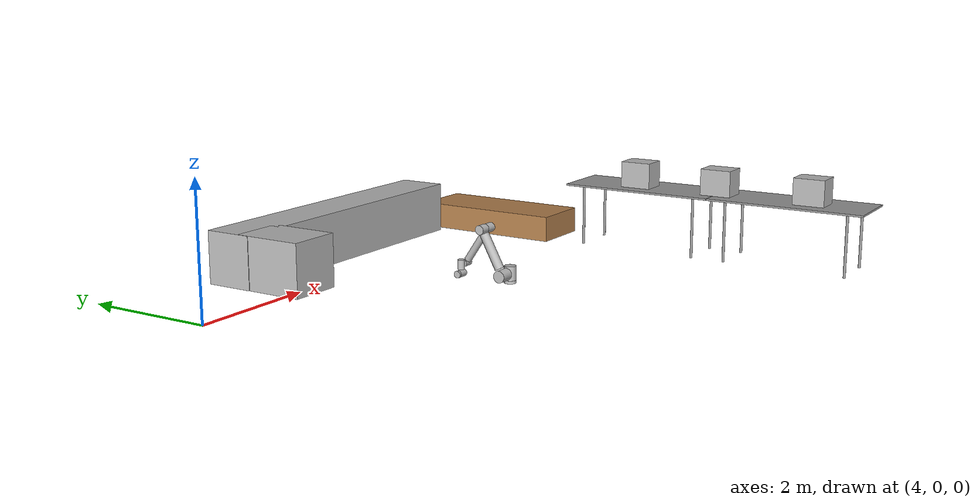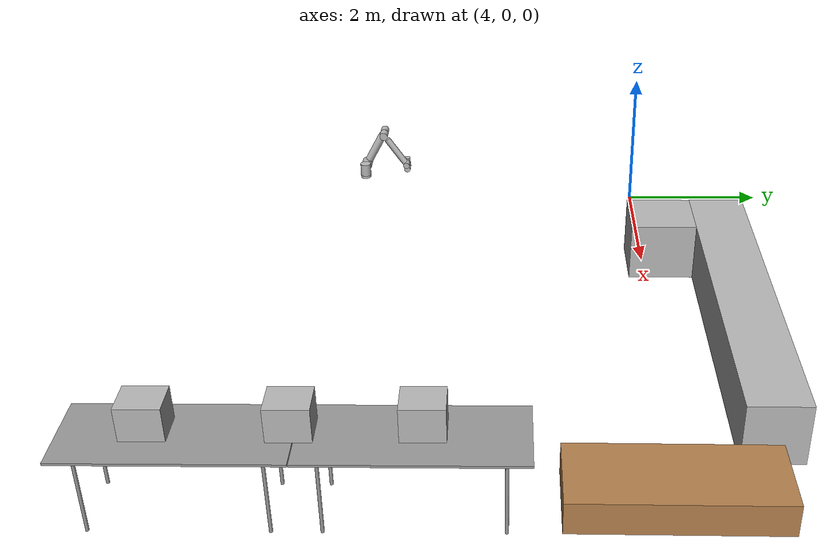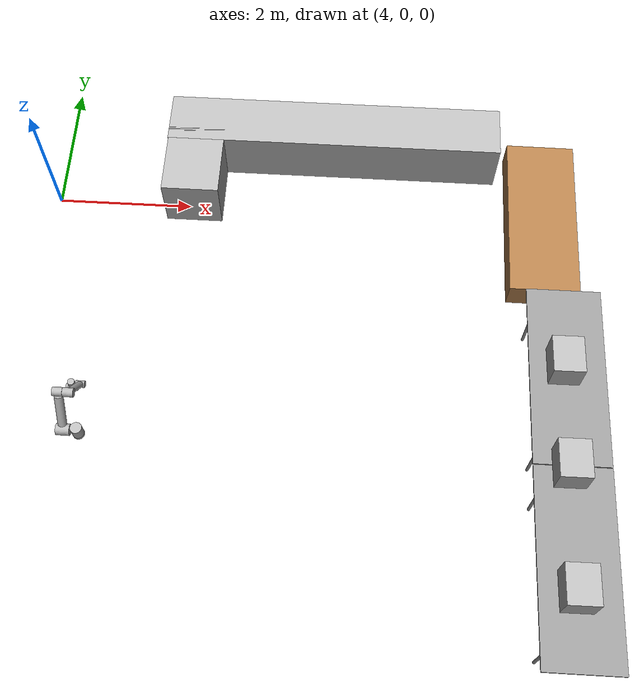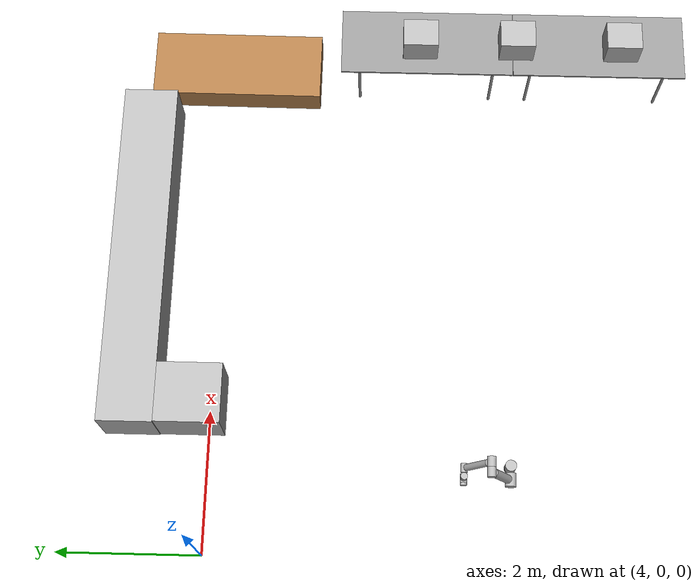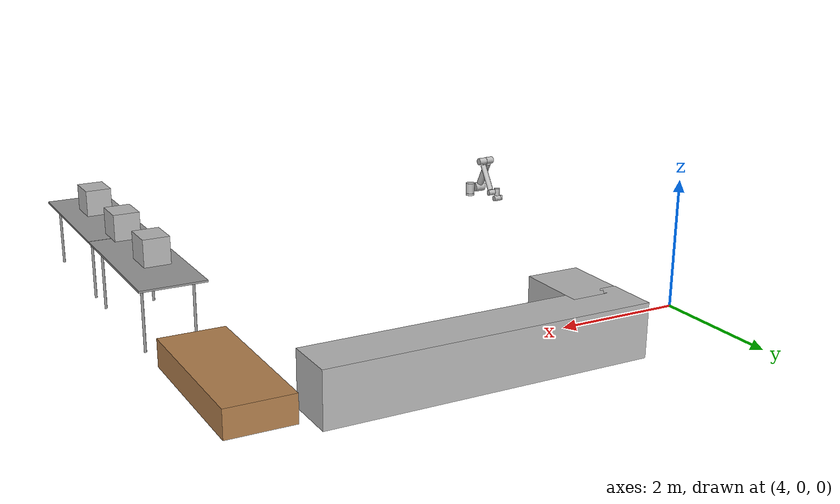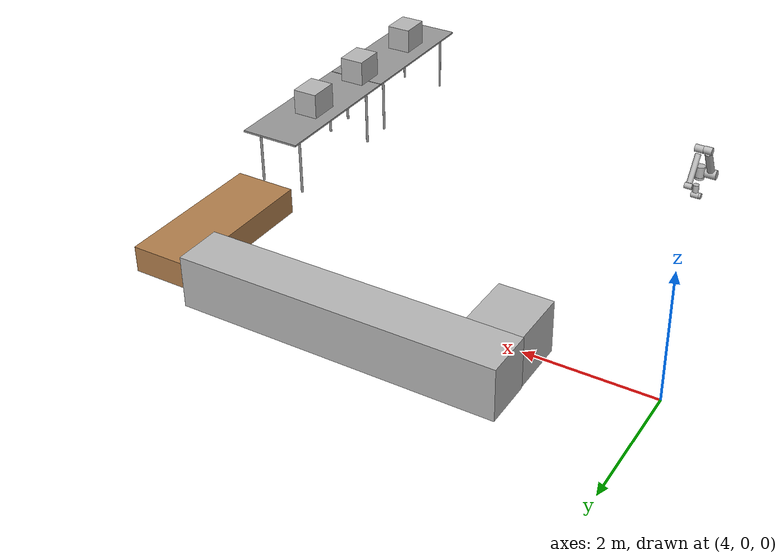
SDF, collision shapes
<sdf version="1.6">
 <model name="erica">
  <model name="3d_printer">
   <link name="link">
    <inertial>
     <mass>1</mass>
     <inertia><ixx>1</ixx><ixy>0</ixy><ixz>0</ixz><iyy>1</iyy><iyz>0</iyz><izz>1</izz></inertia>
    </inertial>
    <visual name="visual">
     <geometry><mesh><uri>model://erica/elements/3d_printer/meshes/model.dae</uri></mesh></geometry>
     <material><shader type="vertex"><normal_map>__default__</normal_map></shader></material>
    </visual>
    <collision name="collision">
     <pose>0.27 0.21 0.21 0 -0 0</pose>
     <geometry><box><size>0.5 0.41 0.42</size></box></geometry>
     <surface>
      <friction>
       <ode><mu>1</mu><mu2>1</mu2><fdir1>0 0 0</fdir1><slip1>0</slip1><slip2>0</slip2></ode>
       <torsional>
        <coefficient>1</coefficient>
        <patch_radius>0</patch_radius>
        <surface_radius>0</surface_radius>
        <use_patch_radius>1</use_patch_radius>
        <ode><slip>0</slip></ode>
       </torsional>
      </friction>
      <bounce><restitution_coefficient>0</restitution_coefficient><threshold>1e+06</threshold></bounce>
      <contact>
       <collide_without_contact>0</collide_without_contact>
       <collide_without_contact_bitmask>1</collide_without_contact_bitmask>
       <collide_bitmask>1</collide_bitmask>
       <ode>
        <soft_cfm>0</soft_cfm>
        <soft_erp>0.2</soft_erp>
        <kp>1e+13</kp>
        <kd>1</kd>
        <max_vel>0.01</max_vel>
        <min_depth>0</min_depth>
       </ode>
       <bullet>
        <split_impulse>1</split_impulse>
        <split_impulse_penetration_threshold>-0.01</split_impulse_penetration_threshold>
        <soft_cfm>0</soft_cfm>
        <soft_erp>0.2</soft_erp>
        <kp>1e+13</kp>
        <kd>1</kd>
       </bullet>
      </contact>
     </surface>
    </collision>
   </link>
   <static>1</static>
   <pose>11.0926 -2.58999 1.01742 0 0 -1.56275</pose>
  </model>
  <model name="3d_printer_clone">
   <link name="link">
    <inertial>
     <mass>1</mass>
     <inertia><ixx>1</ixx><ixy>0</ixy><ixz>0</ixz><iyy>1</iyy><iyz>0</iyz><izz>1</izz></inertia>
    </inertial>
    <visual name="visual">
     <geometry><mesh><uri>model://erica/elements/3d_printer/meshes/model.dae</uri></mesh></geometry>
     <material><shader type="vertex"><normal_map>__default__</normal_map></shader></material>
    </visual>
    <collision name="collision">
     <pose>0.27 0.21 0.21 0 -0 0</pose>
     <geometry><box><size>0.5 0.41 0.42</size></box></geometry>
     <surface>
      <friction>
       <ode><mu>1</mu><mu2>1</mu2><fdir1>0 0 0</fdir1><slip1>0</slip1><slip2>0</slip2></ode>
       <torsional>
        <coefficient>1</coefficient>
        <patch_radius>0</patch_radius>
        <surface_radius>0</surface_radius>
        <use_patch_radius>1</use_patch_radius>
        <ode><slip>0</slip></ode>
       </torsional>
      </friction>
      <bounce><restitution_coefficient>0</restitution_coefficient><threshold>1e+06</threshold></bounce>
      <contact>
       <collide_without_contact>0</collide_without_contact>
       <collide_without_contact_bitmask>1</collide_without_contact_bitmask>
       <collide_bitmask>1</collide_bitmask>
       <ode>
        <soft_cfm>0</soft_cfm>
        <soft_erp>0.2</soft_erp>
        <kp>1e+13</kp>
        <kd>1</kd>
        <max_vel>0.01</max_vel>
        <min_depth>0</min_depth>
       </ode>
       <bullet>
        <split_impulse>1</split_impulse>
        <split_impulse_penetration_threshold>-0.01</split_impulse_penetration_threshold>
        <soft_cfm>0</soft_cfm>
        <soft_erp>0.2</soft_erp>
        <kp>1e+13</kp>
        <kd>1</kd>
       </bullet>
      </contact>
     </surface>
    </collision>
   </link>
   <static>1</static>
   <pose>11.1071 -3.98668 1.01742 0 0 -1.56275</pose>
  </model>
  <model name="3d_printer_clone_clone">
   <link name="link">
    <inertial>
     <mass>1</mass>
     <inertia><ixx>1</ixx><ixy>0</ixy><ixz>0</ixz><iyy>1</iyy><iyz>0</iyz><izz>1</izz></inertia>
    </inertial>
    <visual name="visual">
     <geometry><mesh><uri>model://erica/elements/3d_printer/meshes/model.dae</uri></mesh></geometry>
     <material><shader type="vertex"><normal_map>__default__</normal_map></shader></material>
    </visual>
    <collision name="collision">
     <pose>0.27 0.21 0.21 0 -0 0</pose>
     <geometry><box><size>0.5 0.41 0.42</size></box></geometry>
     <surface>
      <friction>
       <ode><mu>1</mu><mu2>1</mu2><fdir1>0 0 0</fdir1><slip1>0</slip1><slip2>0</slip2></ode>
       <torsional>
        <coefficient>1</coefficient>
        <patch_radius>0</patch_radius>
        <surface_radius>0</surface_radius>
        <use_patch_radius>1</use_patch_radius>
        <ode><slip>0</slip></ode>
       </torsional>
      </friction>
      <bounce><restitution_coefficient>0</restitution_coefficient><threshold>1e+06</threshold></bounce>
      <contact>
       <collide_without_contact>0</collide_without_contact>
       <collide_without_contact_bitmask>1</collide_without_contact_bitmask>
       <collide_bitmask>1</collide_bitmask>
       <ode>
        <soft_cfm>0</soft_cfm>
        <soft_erp>0.2</soft_erp>
        <kp>1e+13</kp>
        <kd>1</kd>
        <max_vel>0.01</max_vel>
        <min_depth>0</min_depth>
       </ode>
       <bullet>
        <split_impulse>1</split_impulse>
        <split_impulse_penetration_threshold>-0.01</split_impulse_penetration_threshold>
        <soft_cfm>0</soft_cfm>
        <soft_erp>0.2</soft_erp>
        <kp>1e+13</kp>
        <kd>1</kd>
       </bullet>
      </contact>
     </surface>
    </collision>
   </link>
   <static>1</static>
   <pose>11.1113 -5.5157 1.01742 0 0 -1.56275</pose>
  </model>
  <model name="3d_sofa">
   <link name="link">
    <inertial>
     <mass>1</mass>
     <inertia><ixx>1</ixx><ixy>0</ixy><ixz>0</ixz><iyy>1</iyy><iyz>0</iyz><izz>1</izz></inertia>
    </inertial>
    <visual name="visual">
     <geometry>
      <mesh><uri>model://erica/elements/3d_sofa/meshes/Sofa.stl</uri><scale>1 1 1</scale></mesh>
     </geometry>
     <material>
      <script><uri>file://media/materials/scripts/gazebo.material</uri><name>Gazebo/Wood</name></script>
     </material>
    </visual>
    <collision name="collision">
     <pose>0.55 -0.5 0.21 0 -0 0</pose>
     <geometry><box><size>2.5 1 0.42</size></box></geometry>
     <surface>
      <friction>
       <ode><mu>1</mu><mu2>1</mu2><fdir1>0 0 0</fdir1><slip1>0</slip1><slip2>0</slip2></ode>
       <torsional>
        <coefficient>1</coefficient>
        <patch_radius>0</patch_radius>
        <surface_radius>0</surface_radius>
        <use_patch_radius>1</use_patch_radius>
        <ode><slip>0</slip></ode>
       </torsional>
      </friction>
      <bounce><restitution_coefficient>0</restitution_coefficient><threshold>1e+06</threshold></bounce>
      <contact>
       <collide_without_contact>0</collide_without_contact>
       <collide_without_contact_bitmask>1</collide_without_contact_bitmask>
       <collide_bitmask>1</collide_bitmask>
       <ode>
        <soft_cfm>0</soft_cfm>
        <soft_erp>0.2</soft_erp>
        <kp>1e+13</kp>
        <kd>1</kd>
        <max_vel>0.01</max_vel>
        <min_depth>0</min_depth>
       </ode>
       <bullet>
        <split_impulse>1</split_impulse>
        <split_impulse_penetration_threshold>-0.01</split_impulse_penetration_threshold>
        <soft_cfm>0</soft_cfm>
        <soft_erp>0.2</soft_erp>
        <kp>1e+13</kp>
        <kd>1</kd>
       </bullet>
      </contact>
     </surface>
    </collision>
   </link>
   <static>1</static>
   <pose>11.7694 0.412179 0 0 0 -1.57679</pose>
  </model>
  <model name="h_table2_clone">
   <link name="link">
    <inertial>
     <inertia><ixx>1</ixx><ixy>0</ixy><ixz>0</ixz><iyy>1</iyy><iyz>0</iyz><izz>1</izz></inertia>
     <mass>1</mass>
    </inertial>
    <visual name="back_left_leg">
     <pose>-0.98 0.38 0.5 0 -0 0</pose>
     <geometry><cylinder><radius>0.02</radius><length>1</length></cylinder></geometry>
     <material>
      <script><uri>file://media/materials/scripts/gazebo.material</uri><name>Gazebo/Grey</name></script>
      <ambient>0.3 0.3 0.3 1</ambient>
      <diffuse>0.7 0.7 0.7 1</diffuse>
      <specular>0.01 0.01 0.01 1</specular>
      <emissive>0 0 0 1</emissive>
      <shader type="vertex"><normal_map>__default__</normal_map></shader>
     </material>
    </visual>
    <visual name="front_right_leg">
     <pose>0.98 -0.38 0.5 0 -0 0</pose>
     <geometry><cylinder><radius>0.02</radius><length>1</length></cylinder></geometry>
     <material>
      <script><uri>file://media/materials/scripts/gazebo.material</uri><name>Gazebo/Grey</name></script>
      <ambient>0.3 0.3 0.3 1</ambient>
      <diffuse>0.7 0.7 0.7 1</diffuse>
      <specular>0.01 0.01 0.01 1</specular>
      <emissive>0 0 0 1</emissive>
      <shader type="vertex"><normal_map>__default__</normal_map></shader>
     </material>
    </visual>
    <visual name="front_left_leg">
     <pose>0.98 0.38 0.5 0 -0 0</pose>
     <geometry><cylinder><radius>0.02</radius><length>1</length></cylinder></geometry>
     <material>
      <script><uri>file://media/materials/scripts/gazebo.material</uri><name>Gazebo/Grey</name></script>
      <ambient>0.3 0.3 0.3 1</ambient>
      <diffuse>0.7 0.7 0.7 1</diffuse>
      <specular>0.01 0.01 0.01 1</specular>
      <emissive>0 0 0 1</emissive>
      <shader type="vertex"><normal_map>__default__</normal_map></shader>
     </material>
    </visual>
    <visual name="back_right_leg">
     <pose>-0.98 -0.38 0.5 0 -0 0</pose>
     <geometry><cylinder><radius>0.02</radius><length>1</length></cylinder></geometry>
     <material>
      <script><uri>file://media/materials/scripts/gazebo.material</uri><name>Gazebo/Grey</name></script>
      <ambient>0.3 0.3 0.3 1</ambient>
      <diffuse>0.7 0.7 0.7 1</diffuse>
      <specular>0.01 0.01 0.01 1</specular>
      <emissive>0 0 0 1</emissive>
      <shader type="vertex"><normal_map>__default__</normal_map></shader>
     </material>
    </visual>
    <visual name="visual1">
     <pose>0 0 1 0 -0 0</pose>
     <geometry><box><size>2.5 1 0.04</size></box></geometry>
     <material>
      <script><uri>file://media/materials/scripts/gazebo.material</uri><name>Gazebo/Wood</name></script>
      <ambient>1 1 1 1</ambient>
      <diffuse>1 1 1 1</diffuse>
      <specular>0.2 0.2 0.2 1</specular>
      <emissive>0 0 0 1</emissive>
      <shader type="vertex"><normal_map>__default__</normal_map></shader>
     </material>
    </visual>
    <collision name="back_left_leg">
     <pose>-0.98 0.38 0.5 0 -0 0</pose>
     <geometry><cylinder><radius>0.02</radius><length>1</length></cylinder></geometry>
     <surface>
      <friction>
       <ode><mu>1</mu><mu2>1</mu2><fdir1>0 0 0</fdir1><slip1>0</slip1><slip2>0</slip2></ode>
       <torsional>
        <coefficient>1</coefficient>
        <patch_radius>0</patch_radius>
        <surface_radius>0</surface_radius>
        <use_patch_radius>1</use_patch_radius>
        <ode><slip>0</slip></ode>
       </torsional>
      </friction>
      <bounce><restitution_coefficient>0</restitution_coefficient><threshold>1e+06</threshold></bounce>
      <contact>
       <collide_without_contact>0</collide_without_contact>
       <collide_without_contact_bitmask>1</collide_without_contact_bitmask>
       <collide_bitmask>1</collide_bitmask>
       <ode>
        <soft_cfm>0</soft_cfm>
        <soft_erp>0.2</soft_erp>
        <kp>1e+13</kp>
        <kd>1</kd>
        <max_vel>0.01</max_vel>
        <min_depth>0</min_depth>
       </ode>
       <bullet>
        <split_impulse>1</split_impulse>
        <split_impulse_penetration_threshold>-0.01</split_impulse_penetration_threshold>
        <soft_cfm>0</soft_cfm>
        <soft_erp>0.2</soft_erp>
        <kp>1e+13</kp>
        <kd>1</kd>
       </bullet>
      </contact>
     </surface>
    </collision>
    <collision name="front_right_leg">
     <pose>0.98 -0.38 0.5 0 -0 0</pose>
     <geometry><cylinder><radius>0.02</radius><length>1</length></cylinder></geometry>
     <surface>
      <friction>
       <ode><mu>1</mu><mu2>1</mu2><fdir1>0 0 0</fdir1><slip1>0</slip1><slip2>0</slip2></ode>
       <torsional>
        <coefficient>1</coefficient>
        <patch_radius>0</patch_radius>
        <surface_radius>0</surface_radius>
        <use_patch_radius>1</use_patch_radius>
        <ode><slip>0</slip></ode>
       </torsional>
      </friction>
      <bounce><restitution_coefficient>0</restitution_coefficient><threshold>1e+06</threshold></bounce>
      <contact>
       <collide_without_contact>0</collide_without_contact>
       <collide_without_contact_bitmask>1</collide_without_contact_bitmask>
       <collide_bitmask>1</collide_bitmask>
       <ode>
        <soft_cfm>0</soft_cfm>
        <soft_erp>0.2</soft_erp>
        <kp>1e+13</kp>
        <kd>1</kd>
        <max_vel>0.01</max_vel>
        <min_depth>0</min_depth>
       </ode>
       <bullet>
        <split_impulse>1</split_impulse>
        <split_impulse_penetration_threshold>-0.01</split_impulse_penetration_threshold>
        <soft_cfm>0</soft_cfm>
        <soft_erp>0.2</soft_erp>
        <kp>1e+13</kp>
        <kd>1</kd>
       </bullet>
      </contact>
     </surface>
    </collision>
    <collision name="back_right_leg">
     <pose>-0.98 -0.38 0.5 0 -0 0</pose>
     <geometry><cylinder><radius>0.02</radius><length>1</length></cylinder></geometry>
     <surface>
      <friction>
       <ode><mu>1</mu><mu2>1</mu2><fdir1>0 0 0</fdir1><slip1>0</slip1><slip2>0</slip2></ode>
       <torsional>
        <coefficient>1</coefficient>
        <patch_radius>0</patch_radius>
        <surface_radius>0</surface_radius>
        <use_patch_radius>1</use_patch_radius>
        <ode><slip>0</slip></ode>
       </torsional>
      </friction>
      <bounce><restitution_coefficient>0</restitution_coefficient><threshold>1e+06</threshold></bounce>
      <contact>
       <collide_without_contact>0</collide_without_contact>
       <collide_without_contact_bitmask>1</collide_without_contact_bitmask>
       <collide_bitmask>1</collide_bitmask>
       <ode>
        <soft_cfm>0</soft_cfm>
        <soft_erp>0.2</soft_erp>
        <kp>1e+13</kp>
        <kd>1</kd>
        <max_vel>0.01</max_vel>
        <min_depth>0</min_depth>
       </ode>
       <bullet>
        <split_impulse>1</split_impulse>
        <split_impulse_penetration_threshold>-0.01</split_impulse_penetration_threshold>
        <soft_cfm>0</soft_cfm>
        <soft_erp>0.2</soft_erp>
        <kp>1e+13</kp>
        <kd>1</kd>
       </bullet>
      </contact>
     </surface>
    </collision>
    <collision name="front_left_leg">
     <pose>0.98 0.38 0.5 0 -0 0</pose>
     <geometry><cylinder><radius>0.02</radius><length>1</length></cylinder></geometry>
     <surface>
      <friction>
       <ode><mu>1</mu><mu2>1</mu2><fdir1>0 0 0</fdir1><slip1>0</slip1><slip2>0</slip2></ode>
       <torsional>
        <coefficient>1</coefficient>
        <patch_radius>0</patch_radius>
        <surface_radius>0</surface_radius>
        <use_patch_radius>1</use_patch_radius>
        <ode><slip>0</slip></ode>
       </torsional>
      </friction>
      <bounce><restitution_coefficient>0</restitution_coefficient><threshold>1e+06</threshold></bounce>
      <contact>
       <collide_without_contact>0</collide_without_contact>
       <collide_without_contact_bitmask>1</collide_without_contact_bitmask>
       <collide_bitmask>1</collide_bitmask>
       <ode>
        <soft_cfm>0</soft_cfm>
        <soft_erp>0.2</soft_erp>
        <kp>1e+13</kp>
        <kd>1</kd>
        <max_vel>0.01</max_vel>
        <min_depth>0</min_depth>
       </ode>
       <bullet>
        <split_impulse>1</split_impulse>
        <split_impulse_penetration_threshold>-0.01</split_impulse_penetration_threshold>
        <soft_cfm>0</soft_cfm>
        <soft_erp>0.2</soft_erp>
        <kp>1e+13</kp>
        <kd>1</kd>
       </bullet>
      </contact>
     </surface>
    </collision>
    <collision name="surface">
     <pose>0 0 1 0 -0 0</pose>
     <geometry><box><size>2.5 1 0.03</size></box></geometry>
     <surface>
      <friction>
       <ode><mu>0.6</mu><mu2>0.6</mu2><fdir1>0 0 0</fdir1><slip1>0</slip1><slip2>0</slip2></ode>
       <torsional>
        <coefficient>1</coefficient>
        <patch_radius>0</patch_radius>
        <surface_radius>0</surface_radius>
        <use_patch_radius>1</use_patch_radius>
        <ode><slip>0</slip></ode>
       </torsional>
      </friction>
      <bounce><restitution_coefficient>0</restitution_coefficient><threshold>1e+06</threshold></bounce>
      <contact>
       <collide_without_contact>0</collide_without_contact>
       <collide_without_contact_bitmask>1</collide_without_contact_bitmask>
       <collide_bitmask>1</collide_bitmask>
       <ode>
        <soft_cfm>0</soft_cfm>
        <soft_erp>0.2</soft_erp>
        <kp>1e+13</kp>
        <kd>1</kd>
        <max_vel>0.01</max_vel>
        <min_depth>0</min_depth>
       </ode>
       <bullet>
        <split_impulse>1</split_impulse>
        <split_impulse_penetration_threshold>-0.01</split_impulse_penetration_threshold>
        <soft_cfm>0</soft_cfm>
        <soft_erp>0.2</soft_erp>
        <kp>1e+13</kp>
        <kd>1</kd>
       </bullet>
      </contact>
     </surface>
    </collision>
   </link>
   <static>1</static>
   <pose>11.3748 -5.46875 0 0 0 -1.56966</pose>
  </model>
  <model name="h_table2_clone_clone">
   <link name="link">
    <inertial>
     <inertia><ixx>1</ixx><ixy>0</ixy><ixz>0</ixz><iyy>1</iyy><iyz>0</iyz><izz>1</izz></inertia>
     <mass>1</mass>
    </inertial>
    <visual name="back_left_leg">
     <pose>-0.98 0.38 0.5 0 -0 0</pose>
     <geometry><cylinder><radius>0.02</radius><length>1</length></cylinder></geometry>
     <material>
      <script><uri>file://media/materials/scripts/gazebo.material</uri><name>Gazebo/Grey</name></script>
      <ambient>0.3 0.3 0.3 1</ambient>
      <diffuse>0.7 0.7 0.7 1</diffuse>
      <specular>0.01 0.01 0.01 1</specular>
      <emissive>0 0 0 1</emissive>
      <shader type="vertex"><normal_map>__default__</normal_map></shader>
     </material>
    </visual>
    <visual name="front_right_leg">
     <pose>0.98 -0.38 0.5 0 -0 0</pose>
     <geometry><cylinder><radius>0.02</radius><length>1</length></cylinder></geometry>
     <material>
      <script><uri>file://media/materials/scripts/gazebo.material</uri><name>Gazebo/Grey</name></script>
      <ambient>0.3 0.3 0.3 1</ambient>
      <diffuse>0.7 0.7 0.7 1</diffuse>
      <specular>0.01 0.01 0.01 1</specular>
      <emissive>0 0 0 1</emissive>
      <shader type="vertex"><normal_map>__default__</normal_map></shader>
     </material>
    </visual>
    <visual name="front_left_leg">
     <pose>0.98 0.38 0.5 0 -0 0</pose>
     <geometry><cylinder><radius>0.02</radius><length>1</length></cylinder></geometry>
     <material>
      <script><uri>file://media/materials/scripts/gazebo.material</uri><name>Gazebo/Grey</name></script>
      <ambient>0.3 0.3 0.3 1</ambient>
      <diffuse>0.7 0.7 0.7 1</diffuse>
      <specular>0.01 0.01 0.01 1</specular>
      <emissive>0 0 0 1</emissive>
      <shader type="vertex"><normal_map>__default__</normal_map></shader>
     </material>
    </visual>
    <visual name="back_right_leg">
     <pose>-0.98 -0.38 0.5 0 -0 0</pose>
     <geometry><cylinder><radius>0.02</radius><length>1</length></cylinder></geometry>
     <material>
      <script><uri>file://media/materials/scripts/gazebo.material</uri><name>Gazebo/Grey</name></script>
      <ambient>0.3 0.3 0.3 1</ambient>
      <diffuse>0.7 0.7 0.7 1</diffuse>
      <specular>0.01 0.01 0.01 1</specular>
      <emissive>0 0 0 1</emissive>
      <shader type="vertex"><normal_map>__default__</normal_map></shader>
     </material>
    </visual>
    <visual name="visual1">
     <pose>0 0 1 0 -0 0</pose>
     <geometry><box><size>2.5 1 0.04</size></box></geometry>
     <material>
      <script><uri>file://media/materials/scripts/gazebo.material</uri><name>Gazebo/Wood</name></script>
      <ambient>1 1 1 1</ambient>
      <diffuse>1 1 1 1</diffuse>
      <specular>0.2 0.2 0.2 1</specular>
      <emissive>0 0 0 1</emissive>
      <shader type="vertex"><normal_map>__default__</normal_map></shader>
     </material>
    </visual>
    <collision name="back_left_leg">
     <pose>-0.98 0.38 0.5 0 -0 0</pose>
     <geometry><cylinder><radius>0.02</radius><length>1</length></cylinder></geometry>
     <surface>
      <friction>
       <ode><mu>1</mu><mu2>1</mu2><fdir1>0 0 0</fdir1><slip1>0</slip1><slip2>0</slip2></ode>
       <torsional>
        <coefficient>1</coefficient>
        <patch_radius>0</patch_radius>
        <surface_radius>0</surface_radius>
        <use_patch_radius>1</use_patch_radius>
        <ode><slip>0</slip></ode>
       </torsional>
      </friction>
      <bounce><restitution_coefficient>0</restitution_coefficient><threshold>1e+06</threshold></bounce>
      <contact>
       <collide_without_contact>0</collide_without_contact>
       <collide_without_contact_bitmask>1</collide_without_contact_bitmask>
       <collide_bitmask>1</collide_bitmask>
       <ode>
        <soft_cfm>0</soft_cfm>
        <soft_erp>0.2</soft_erp>
        <kp>1e+13</kp>
        <kd>1</kd>
        <max_vel>0.01</max_vel>
        <min_depth>0</min_depth>
       </ode>
       <bullet>
        <split_impulse>1</split_impulse>
        <split_impulse_penetration_threshold>-0.01</split_impulse_penetration_threshold>
        <soft_cfm>0</soft_cfm>
        <soft_erp>0.2</soft_erp>
        <kp>1e+13</kp>
        <kd>1</kd>
       </bullet>
      </contact>
     </surface>
    </collision>
    <collision name="front_right_leg">
     <pose>0.98 -0.38 0.5 0 -0 0</pose>
     <geometry><cylinder><radius>0.02</radius><length>1</length></cylinder></geometry>
     <surface>
      <friction>
       <ode><mu>1</mu><mu2>1</mu2><fdir1>0 0 0</fdir1><slip1>0</slip1><slip2>0</slip2></ode>
       <torsional>
        <coefficient>1</coefficient>
        <patch_radius>0</patch_radius>
        <surface_radius>0</surface_radius>
        <use_patch_radius>1</use_patch_radius>
        <ode><slip>0</slip></ode>
       </torsional>
      </friction>
      <bounce><restitution_coefficient>0</restitution_coefficient><threshold>1e+06</threshold></bounce>
      <contact>
       <collide_without_contact>0</collide_without_contact>
       <collide_without_contact_bitmask>1</collide_without_contact_bitmask>
       <collide_bitmask>1</collide_bitmask>
       <ode>
        <soft_cfm>0</soft_cfm>
        <soft_erp>0.2</soft_erp>
        <kp>1e+13</kp>
        <kd>1</kd>
        <max_vel>0.01</max_vel>
        <min_depth>0</min_depth>
       </ode>
       <bullet>
        <split_impulse>1</split_impulse>
        <split_impulse_penetration_threshold>-0.01</split_impulse_penetration_threshold>
        <soft_cfm>0</soft_cfm>
        <soft_erp>0.2</soft_erp>
        <kp>1e+13</kp>
        <kd>1</kd>
       </bullet>
      </contact>
     </surface>
    </collision>
    <collision name="back_right_leg">
     <pose>-0.98 -0.38 0.5 0 -0 0</pose>
     <geometry><cylinder><radius>0.02</radius><length>1</length></cylinder></geometry>
     <surface>
      <friction>
       <ode><mu>1</mu><mu2>1</mu2><fdir1>0 0 0</fdir1><slip1>0</slip1><slip2>0</slip2></ode>
       <torsional>
        <coefficient>1</coefficient>
        <patch_radius>0</patch_radius>
        <surface_radius>0</surface_radius>
        <use_patch_radius>1</use_patch_radius>
        <ode><slip>0</slip></ode>
       </torsional>
      </friction>
      <bounce><restitution_coefficient>0</restitution_coefficient><threshold>1e+06</threshold></bounce>
      <contact>
       <collide_without_contact>0</collide_without_contact>
       <collide_without_contact_bitmask>1</collide_without_contact_bitmask>
       <collide_bitmask>1</collide_bitmask>
       <ode>
        <soft_cfm>0</soft_cfm>
        <soft_erp>0.2</soft_erp>
        <kp>1e+13</kp>
        <kd>1</kd>
        <max_vel>0.01</max_vel>
        <min_depth>0</min_depth>
       </ode>
       <bullet>
        <split_impulse>1</split_impulse>
        <split_impulse_penetration_threshold>-0.01</split_impulse_penetration_threshold>
        <soft_cfm>0</soft_cfm>
        <soft_erp>0.2</soft_erp>
        <kp>1e+13</kp>
        <kd>1</kd>
       </bullet>
      </contact>
     </surface>
    </collision>
    <collision name="front_left_leg">
     <pose>0.98 0.38 0.5 0 -0 0</pose>
     <geometry><cylinder><radius>0.02</radius><length>1</length></cylinder></geometry>
     <surface>
      <friction>
       <ode><mu>1</mu><mu2>1</mu2><fdir1>0 0 0</fdir1><slip1>0</slip1><slip2>0</slip2></ode>
       <torsional>
        <coefficient>1</coefficient>
        <patch_radius>0</patch_radius>
        <surface_radius>0</surface_radius>
        <use_patch_radius>1</use_patch_radius>
        <ode><slip>0</slip></ode>
       </torsional>
      </friction>
      <bounce><restitution_coefficient>0</restitution_coefficient><threshold>1e+06</threshold></bounce>
      <contact>
       <collide_without_contact>0</collide_without_contact>
       <collide_without_contact_bitmask>1</collide_without_contact_bitmask>
       <collide_bitmask>1</collide_bitmask>
       <ode>
        <soft_cfm>0</soft_cfm>
        <soft_erp>0.2</soft_erp>
        <kp>1e+13</kp>
        <kd>1</kd>
        <max_vel>0.01</max_vel>
        <min_depth>0</min_depth>
       </ode>
       <bullet>
        <split_impulse>1</split_impulse>
        <split_impulse_penetration_threshold>-0.01</split_impulse_penetration_threshold>
        <soft_cfm>0</soft_cfm>
        <soft_erp>0.2</soft_erp>
        <kp>1e+13</kp>
        <kd>1</kd>
       </bullet>
      </contact>
     </surface>
    </collision>
    <collision name="surface">
     <pose>0 0 1 0 -0 0</pose>
     <geometry><box><size>2.5 1 0.03</size></box></geometry>
     <surface>
      <friction>
       <ode><mu>0.6</mu><mu2>0.6</mu2><fdir1>0 0 0</fdir1><slip1>0</slip1><slip2>0</slip2></ode>
       <torsional>
        <coefficient>1</coefficient>
        <patch_radius>0</patch_radius>
        <surface_radius>0</surface_radius>
        <use_patch_radius>1</use_patch_radius>
        <ode><slip>0</slip></ode>
       </torsional>
      </friction>
      <bounce><restitution_coefficient>0</restitution_coefficient><threshold>1e+06</threshold></bounce>
      <contact>
       <collide_without_contact>0</collide_without_contact>
       <collide_without_contact_bitmask>1</collide_without_contact_bitmask>
       <collide_bitmask>1</collide_bitmask>
       <ode>
        <soft_cfm>0</soft_cfm>
        <soft_erp>0.2</soft_erp>
        <kp>1e+13</kp>
        <kd>1</kd>
        <max_vel>0.01</max_vel>
        <min_depth>0</min_depth>
       </ode>
       <bullet>
        <split_impulse>1</split_impulse>
        <split_impulse_penetration_threshold>-0.01</split_impulse_penetration_threshold>
        <soft_cfm>0</soft_cfm>
        <soft_erp>0.2</soft_erp>
        <kp>1e+13</kp>
        <kd>1</kd>
       </bullet>
      </contact>
     </surface>
    </collision>
   </link>
   <static>1</static>
   <pose>11.371 -2.95883 0 0 0 -1.56966</pose>
  </model>
  <model name="kitchen">
   <link name="link_0">
    <inertial>
     <mass>1</mass>
     <inertia>
      <ixx>0.166667</ixx>
      <ixy>0</ixy>
      <ixz>0</ixz>
      <iyy>0.166667</iyy>
      <iyz>0</iyz>
      <izz>0.166667</izz>
     </inertia>
    </inertial>
    <visual name="visual">
     <pose>0 0.32 0 0 -0 0</pose>
     <geometry>
      <mesh><uri>model://erica/elements/kitchen/meshes/model.dae</uri><scale>0.055 0.055 0.06</scale></mesh>
     </geometry>
     <material><shader type="vertex"><normal_map>__default__</normal_map></shader></material>
    </visual>
    <collision name="collision_1">
     <pose>-2.05 -0.39 0.41 0 -0 0</pose>
     <geometry><box><size>0.83 1.1 0.82</size></box></geometry>
     <surface>
      <friction>
       <ode><mu>1</mu><mu2>1</mu2><fdir1>0 0 0</fdir1><slip1>0</slip1><slip2>0</slip2></ode>
       <torsional>
        <coefficient>1</coefficient>
        <patch_radius>0</patch_radius>
        <surface_radius>0</surface_radius>
        <use_patch_radius>1</use_patch_radius>
        <ode><slip>0</slip></ode>
       </torsional>
      </friction>
      <bounce><restitution_coefficient>0</restitution_coefficient><threshold>1e+06</threshold></bounce>
      <contact>
       <collide_without_contact>0</collide_without_contact>
       <collide_without_contact_bitmask>1</collide_without_contact_bitmask>
       <collide_bitmask>1</collide_bitmask>
       <ode>
        <soft_cfm>0</soft_cfm>
        <soft_erp>0.2</soft_erp>
        <kp>1e+13</kp>
        <kd>1</kd>
        <max_vel>0.01</max_vel>
        <min_depth>0</min_depth>
       </ode>
       <bullet>
        <split_impulse>1</split_impulse>
        <split_impulse_penetration_threshold>-0.01</split_impulse_penetration_threshold>
        <soft_cfm>0</soft_cfm>
        <soft_erp>0.2</soft_erp>
        <kp>1e+13</kp>
        <kd>1</kd>
       </bullet>
      </contact>
     </surface>
    </collision>
    <collision name="collision">
     <pose>0 0.35 0.41 0 -0 0</pose>
     <geometry><box><size>4.95 0.77 0.82</size></box></geometry>
     <surface>
      <friction>
       <ode><mu>1</mu><mu2>1</mu2><fdir1>0 0 0</fdir1><slip1>0</slip1><slip2>0</slip2></ode>
       <torsional>
        <coefficient>1</coefficient>
        <patch_radius>0</patch_radius>
        <surface_radius>0</surface_radius>
        <use_patch_radius>1</use_patch_radius>
        <ode><slip>0</slip></ode>
       </torsional>
      </friction>
      <bounce><restitution_coefficient>0</restitution_coefficient><threshold>1e+06</threshold></bounce>
      <contact>
       <collide_without_contact>0</collide_without_contact>
       <collide_without_contact_bitmask>1</collide_without_contact_bitmask>
       <collide_bitmask>1</collide_bitmask>
       <ode>
        <soft_cfm>0</soft_cfm>
        <soft_erp>0.2</soft_erp>
        <kp>1e+13</kp>
        <kd>1</kd>
        <max_vel>0.01</max_vel>
        <min_depth>0</min_depth>
       </ode>
       <bullet>
        <split_impulse>1</split_impulse>
        <split_impulse_penetration_threshold>-0.01</split_impulse_penetration_threshold>
        <soft_cfm>0</soft_cfm>
        <soft_erp>0.2</soft_erp>
        <kp>1e+13</kp>
        <kd>1</kd>
       </bullet>
      </contact>
     </surface>
    </collision>
   </link>
   <static>1</static>
   <pose>8.12994 0.713532 0 0 -0 0</pose>
  </model>
  <model name="ur10_clone_clone_0_clone">
   <link name="base">
    <inertial>
     <mass>4</mass>
     <inertia>
      <ixx>0.00610633</ixx>
      <ixy>0</ixy>
      <ixz>0</ixz>
      <iyy>0.00610633</iyy>
      <iyz>0</iyz>
      <izz>0.01125</izz>
     </inertia>
    </inertial>
    <collision name="collision">
     <pose>0 0 0.019 0 -0 0</pose>
     <geometry><cylinder><radius>0.075</radius><length>0.038</length></cylinder></geometry>
    </collision>
    <visual name="visual"><geometry><mesh><uri>model://ur10/meshes/base.dae</uri></mesh></geometry></visual>
   </link>
   <link name="shoulder">
    <pose>0 0 0.1273 0 -0 0</pose>
    <inertial>
     <mass>7.778</mass>
     <inertia>
      <ixx>0.0314743</ixx>
      <ixy>0</ixy>
      <ixz>0</ixz>
      <iyy>0.0314743</iyy>
      <iyz>0</iyz>
      <izz>0.0218756</izz>
     </inertia>
    </inertial>
    <collision name="collision">
     <geometry><cylinder><radius>0.075</radius><length>0.177</length></cylinder></geometry>
    </collision>
    <visual name="visual"><geometry><mesh><uri>model://ur10/meshes/shoulder.dae</uri></mesh></geometry></visual>
   </link>
   <link name="upper_arm">
    <pose>0 0.220941 0.1273 0 0.495268 0</pose>
    <inertial>
     <pose>0 0 0.306 0 -0 0</pose>
     <mass>12.93</mass>
     <inertia>
      <ixx>0.421754</ixx>
      <ixy>0</ixy>
      <ixz>0</ixz>
      <iyy>0.421754</iyy>
      <iyz>0</iyz>
      <izz>0.0363656</izz>
     </inertia>
    </inertial>
    <collision name="collision1">
     <pose>0 -0.045 0 1.5707 -0 0</pose>
     <geometry><cylinder><radius>0.075</radius><length>0.177</length></cylinder></geometry>
    </collision>
    <collision name="collision2">
     <pose>0 -0.0436 0.32 0 -0 1.5707</pose>
     <geometry><cylinder><radius>0.058</radius><length>0.461</length></cylinder></geometry>
    </collision>
    <collision name="collision3">
     <pose>0 -0.04 0.613 1.5707 -0 0</pose>
     <geometry><cylinder><radius>0.058</radius><length>0.129</length></cylinder></geometry>
    </collision>
    <visual name="visual"><geometry><mesh><uri>model://ur10/meshes/upperarm.dae</uri></mesh></geometry></visual>
   </link>
   <link name="forearm">
    <pose>0.290881 0.049041 0.663009 -3.14159 0.593801 -3.14159</pose>
    <inertial>
     <pose>0 0 0.28615 0 -0 0</pose>
     <mass>3.87</mass>
     <inertia>
      <ixx>0.11107</ixx>
      <ixy>0</ixy>
      <ixz>0</ixz>
      <iyy>0.11107</iyy>
      <iyz>0</iyz>
      <izz>0.0108844</izz>
     </inertia>
    </inertial>
    <collision name="collision1">
     <pose>0 0 0.001 1.5707 -0 0</pose>
     <geometry><cylinder><radius>0.058</radius><length>0.136</length></cylinder></geometry>
    </collision>
    <collision name="collision2">
     <pose>0 0 0.305 0 -0 1.5707</pose>
     <geometry><cylinder><radius>0.045</radius><length>0.447</length></cylinder></geometry>
    </collision>
    <collision name="collision3">
     <pose>0 0.001 0.5735 1.5707 -0 0</pose>
     <geometry><cylinder><radius>0.045</radius><length>0.119</length></cylinder></geometry>
    </collision>
    <visual name="visua"><geometry><mesh><uri>model://ur10/meshes/forearm.dae</uri></mesh></geometry></visual>
   </link>
   <link name="wrist_1">
    <pose>0.612763 0.048289 0.188032 3.14159 -0 3.14159</pose>
    <inertial>
     <mass>1.96</mass>
     <inertia>
      <ixx>0.00510825</ixx>
      <ixy>0</ixy>
      <ixz>0</ixz>
      <iyy>0.00510825</iyy>
      <iyz>0</iyz>
      <izz>0.0055125</izz>
     </inertia>
    </inertial>
    <collision name="collision">
     <pose>0 0.115 0.0025 0 -0 0</pose>
     <geometry><cylinder><radius>0.0455</radius><length>0.119</length></cylinder></geometry>
    </collision>
    <visual name="visual"><geometry><mesh><uri>model://ur10/meshes/wrist1.dae</uri></mesh></geometry></visual>
   </link>
   <link name="wrist_2">
    <pose>0.612784 0.163041 0.188126 3.14159 -0 3.14159</pose>
    <inertial>
     <mass>1.96</mass>
     <inertia>
      <ixx>0.00510825</ixx>
      <ixy>0</ixy>
      <ixz>0</ixz>
      <iyy>0.00510825</iyy>
      <iyz>0</iyz>
      <izz>0.0055125</izz>
     </inertia>
    </inertial>
    <collision name="collision">
     <pose>0 0.002 0.11659 1.5707 -0 0</pose>
     <geometry><cylinder><radius>0.0455</radius><length>0.119</length></cylinder></geometry>
    </collision>
    <visual name="visual"><geometry><mesh><uri>model://ur10/meshes/wrist2.dae</uri></mesh></geometry></visual>
   </link>
   <link name="wrist_3">
    <pose>0.612058 0.163655 0.072656 3.14159 -0 3.14159</pose>
    <inertial>
     <mass>0.202</mass>
     <inertia>
      <ixx>0.000526462</ixx>
      <ixy>0</ixy>
      <ixz>0</ixz>
      <iyy>0.000526462</iyy>
      <iyz>0</iyz>
      <izz>0.000568125</izz>
     </inertia>
    </inertial>
    <collision name="collision">
     <pose>0 0.0765 0 1.5707 -0 0</pose>
     <geometry><cylinder><radius>0.045</radius><length>0.031</length></cylinder></geometry>
    </collision>
    <visual name="visual"><geometry><mesh><uri>model://ur10/meshes/wrist3.dae</uri></mesh></geometry></visual>
   </link>
   <static>1</static>
   <pose>5.11797 -4.10893 0.907896 0 -0 1.56</pose>
  </model>
  <static>1</static>
 </model>
</sdf>
